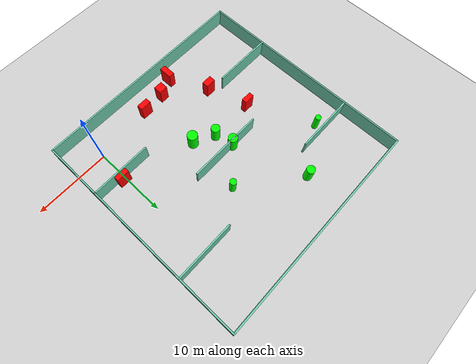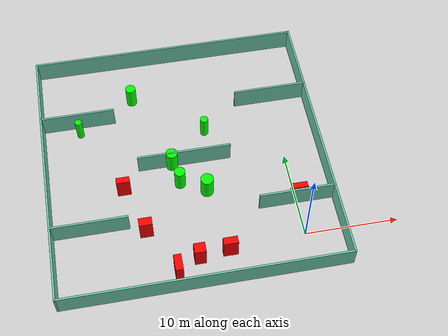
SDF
<sdf version="1.7">
 <world name="default">
  <light name="sun" type="directional">
   <pose>0 0 10 0 -0 0</pose>
   <diffuse>0.8 0.8 0.8 1</diffuse>
   <specular>0.2 0.2 0.2 1</specular>
   <attenuation>
    <range>1000</range>
    <constant>0.9</constant>
    <linear>0.01</linear>
    <quadratic>0.001</quadratic>
   </attenuation>
   <direction>-0.5 0.1 -0.9</direction>
   <spot><inner_angle>0</inner_angle><outer_angle>0</outer_angle><falloff>0</falloff></spot>
  </light>
  <model name="ground_plane">
   <static>1</static>
   <link name="link">
    <collision name="collision">
     <geometry><plane><normal>0 0 1</normal><size>100 100</size></plane></geometry>
     <surface>
      <contact><collide_bitmask>65535</collide_bitmask></contact>
      <friction><ode><mu>100</mu><mu2>50</mu2></ode></friction>
     </surface>
    </collision>
    <visual name="visual">
     <cast_shadows>0</cast_shadows>
     <geometry><plane><normal>0 0 1</normal><size>100 100</size></plane></geometry>
     <material>
      <script><uri>file://media/materials/scripts/gazebo.material</uri><name>Gazebo/Grey</name></script>
     </material>
    </visual>
   </link>
  </model>
  <gravity>0 0 -9.8</gravity>
  <magnetic_field>6e-06 2.3e-05 -4.2e-05</magnetic_field>
  <atmosphere type="adiabatic"/>
  <physics type="ode">
   <max_step_size>0.001</max_step_size>
   <real_time_factor>1</real_time_factor>
   <real_time_update_rate>1000</real_time_update_rate>
  </physics>
  <scene><ambient>0.4 0.4 0.4 1</ambient><background>0.7 0.7 0.7 1</background><shadows>1</shadows></scene>
  <spherical_coordinates>
   <surface_model>EARTH_WGS84</surface_model>
   <latitude_deg>0</latitude_deg>
   <longitude_deg>0</longitude_deg>
   <elevation>0</elevation>
   <heading_deg>0</heading_deg>
  </spherical_coordinates>
  <model name="my_base_walls">
   <link name="Wall_10">
    <collision name="Wall_10_Collision">
     <geometry><box><size>8.2 0.2 2.5</size></box></geometry>
     <pose>0 0 1.25 0 -0 0</pose>
    </collision>
    <visual name="Wall_10_Visual">
     <pose>0 0 1.25 0 -0 0</pose>
     <geometry><box><size>8.2 0.2 2.5</size></box></geometry>
     <material>
      <script><uri>file://media/materials/scripts/gazebo.material</uri><name>Gazebo/Grey</name></script>
      <ambient>0.435294 0.796078 0.67451 1</ambient>
     </material>
     <meta><layer>0</layer></meta>
    </visual>
    <pose>-11 -7 0 0 -0 0</pose>
   </link>
   <link name="Wall_12">
    <collision name="Wall_12_Collision">
     <geometry><box><size>8.2 0.2 2.5</size></box></geometry>
     <pose>0 0 1.25 0 -0 0</pose>
    </collision>
    <visual name="Wall_12_Visual">
     <pose>0 0 1.25 0 -0 0</pose>
     <geometry><box><size>8.2 0.2 2.5</size></box></geometry>
     <material>
      <script><uri>file://media/materials/scripts/gazebo.material</uri><name>Gazebo/Grey</name></script>
      <ambient>0.435294 0.796078 0.67451 1</ambient>
     </material>
     <meta><layer>0</layer></meta>
    </visual>
    <pose>-11 7 0 0 -0 0</pose>
   </link>
   <link name="Wall_14">
    <collision name="Wall_14_Collision">
     <geometry><box><size>8.2 0.2 2.5</size></box></geometry>
     <pose>0 0 1.25 0 -0 0</pose>
    </collision>
    <visual name="Wall_14_Visual">
     <pose>0 0 1.25 0 -0 0</pose>
     <geometry><box><size>8.2 0.2 2.5</size></box></geometry>
     <material>
      <script><uri>file://media/materials/scripts/gazebo.material</uri><name>Gazebo/Grey</name></script>
      <ambient>0.435294 0.796078 0.67451 1</ambient>
     </material>
     <meta><layer>0</layer></meta>
    </visual>
    <pose>11 7 0 0 -0 3.14159</pose>
   </link>
   <link name="Wall_16">
    <collision name="Wall_16_Collision">
     <geometry><box><size>10.2 0.2 2.5</size></box></geometry>
     <pose>0 0 1.25 0 -0 0</pose>
    </collision>
    <visual name="Wall_16_Visual">
     <pose>0 0 1.25 0 -0 0</pose>
     <geometry><box><size>10.2 0.2 2.5</size></box></geometry>
     <material>
      <script><uri>file://media/materials/scripts/gazebo.material</uri><name>Gazebo/Grey</name></script>
      <ambient>0.435294 0.796078 0.67451 1</ambient>
     </material>
     <meta><layer>0</layer></meta>
    </visual>
    <pose>0 0 0 0 -0 3.14159</pose>
   </link>
   <link name="Wall_2">
    <collision name="Wall_2_Collision">
     <geometry><box><size>30.2 0.2 2.5</size></box></geometry>
     <pose>0 0 1.25 0 -0 0</pose>
    </collision>
    <visual name="Wall_2_Visual">
     <pose>0 0 1.25 0 -0 0</pose>
     <geometry><box><size>30.2 0.2 2.5</size></box></geometry>
     <material>
      <script><uri>file://media/materials/scripts/gazebo.material</uri><name>Gazebo/Grey</name></script>
      <ambient>0.435294 0.796078 0.67451 1</ambient>
     </material>
     <meta><layer>0</layer></meta>
    </visual>
    <pose>0 -15 0 0 -0 3.14159</pose>
   </link>
   <link name="Wall_3">
    <collision name="Wall_3_Collision">
     <geometry><box><size>30.2 0.2 2.5</size></box></geometry>
     <pose>0 0 1.25 0 -0 0</pose>
    </collision>
    <visual name="Wall_3_Visual">
     <pose>0 0 1.25 0 -0 0</pose>
     <geometry><box><size>30.2 0.2 2.5</size></box></geometry>
     <material>
      <script><uri>file://media/materials/scripts/gazebo.material</uri><name>Gazebo/Grey</name></script>
      <ambient>0.435294 0.796078 0.67451 1</ambient>
     </material>
     <meta><layer>0</layer></meta>
    </visual>
    <pose>-15 0 0 0 -0 1.5708</pose>
   </link>
   <link name="Wall_4">
    <collision name="Wall_4_Collision">
     <geometry><box><size>30.2 0.2 2.5</size></box></geometry>
     <pose>0 0 1.25 0 -0 0</pose>
    </collision>
    <visual name="Wall_4_Visual">
     <pose>0 0 1.25 0 -0 0</pose>
     <geometry><box><size>30.2 0.2 2.5</size></box></geometry>
     <material>
      <script><uri>file://media/materials/scripts/gazebo.material</uri><name>Gazebo/Grey</name></script>
      <ambient>0.435294 0.796078 0.67451 1</ambient>
     </material>
     <meta><layer>0</layer></meta>
    </visual>
    <pose>0 15 0 0 -0 0</pose>
   </link>
   <link name="Wall_6">
    <collision name="Wall_6_Collision">
     <geometry><box><size>30.2 0.2 2.5</size></box></geometry>
     <pose>0 0 1.25 0 -0 0</pose>
    </collision>
    <visual name="Wall_6_Visual">
     <pose>0 0 1.25 0 -0 0</pose>
     <geometry><box><size>30.2 0.2 2.5</size></box></geometry>
     <material>
      <script><uri>file://media/materials/scripts/gazebo.material</uri><name>Gazebo/Grey</name></script>
      <ambient>0.435294 0.796078 0.67451 1</ambient>
     </material>
     <meta><layer>0</layer></meta>
    </visual>
    <pose>15 0 0 0 -0 1.5708</pose>
   </link>
   <link name="Wall_8">
    <collision name="Wall_8_Collision">
     <geometry><box><size>8.2 0.2 2.5</size></box></geometry>
     <pose>0 0 1.25 0 -0 0</pose>
    </collision>
    <visual name="Wall_8_Visual">
     <pose>0 0 1.25 0 -0 0</pose>
     <geometry><box><size>8.2 0.2 2.5</size></box></geometry>
     <material>
      <script><uri>file://media/materials/scripts/gazebo.material</uri><name>Gazebo/Grey</name></script>
      <ambient>0.435294 0.796078 0.67451 1</ambient>
     </material>
     <meta><layer>0</layer></meta>
    </visual>
    <pose>11 -7 0 0 -0 3.14159</pose>
   </link>
   <static>1</static>
   <pose>-11 11 0 0 -0 0</pose>
  </model>
  <model name="cylinder1">
   <static>1</static>
   <link name="link">
    <inertial>
     <mass>1</mass>
     <inertia><ixx>0.5</ixx><ixy>0</ixy><ixz>0</ixz><iyy>0.5</iyy><iyz>0</iyz><izz>1</izz></inertia>
    </inertial>
    <collision name="collision">
     <geometry><cylinder><radius>0.6935049382693372</radius><length>2.5</length></cylinder></geometry>
    </collision>
    <visual name="visual">
     <geometry><cylinder><radius>0.6935049382693372</radius><length>2.5</length></cylinder></geometry>
     <material>
      <ambient>0 1 0 1</ambient>
      <diffuse>0 1 0 1</diffuse>
      <specular>0.1 0.1 0.1 1</specular>
      <emissive>0 0 0 0</emissive>
     </material>
    </visual>
   </link>
   <pose>-9.16969957769431 7.01272207530333 1.25 0 0 0</pose>
  </model>
  <model name="cylinder2">
   <static>1</static>
   <link name="link">
    <inertial>
     <mass>1</mass>
     <inertia><ixx>0.5</ixx><ixy>0</ixy><ixz>0</ixz><iyy>0.5</iyy><iyz>0</iyz><izz>1</izz></inertia>
    </inertial>
    <collision name="collision">
     <geometry><cylinder><radius>0.5634184202157226</radius><length>2.5</length></cylinder></geometry>
    </collision>
    <visual name="visual">
     <geometry><cylinder><radius>0.5634184202157226</radius><length>2.5</length></cylinder></geometry>
     <material>
      <ambient>0 1 0 1</ambient>
      <diffuse>0 1 0 1</diffuse>
      <specular>0.1 0.1 0.1 1</specular>
      <emissive>0 0 0 0</emissive>
     </material>
    </visual>
   </link>
   <pose>-15.688371116368062 20.569905794341697 1.25 0 0 0</pose>
  </model>
  <model name="cylinder3">
   <static>1</static>
   <link name="link">
    <inertial>
     <mass>1</mass>
     <inertia><ixx>0.5</ixx><ixy>0</ixy><ixz>0</ixz><iyy>0.5</iyy><iyz>0</iyz><izz>1</izz></inertia>
    </inertial>
    <collision name="collision">
     <geometry><cylinder><radius>0.3836401330784923</radius><length>2.5</length></cylinder></geometry>
    </collision>
    <visual name="visual">
     <geometry><cylinder><radius>0.3836401330784923</radius><length>2.5</length></cylinder></geometry>
     <material>
      <ambient>0 1 0 1</ambient>
      <diffuse>0 1 0 1</diffuse>
      <specular>0.1 0.1 0.1 1</specular>
      <emissive>0 0 0 0</emissive>
     </material>
    </visual>
   </link>
   <pose>-21.931094768175985 16.867306141714025 1.25 0 0 0</pose>
  </model>
  <model name="cylinder4">
   <static>1</static>
   <link name="link">
    <inertial>
     <mass>1</mass>
     <inertia><ixx>0.5</ixx><ixy>0</ixy><ixz>0</ixz><iyy>0.5</iyy><iyz>0</iyz><izz>1</izz></inertia>
    </inertial>
    <collision name="collision">
     <geometry><cylinder><radius>0.4380758036214287</radius><length>2.5</length></cylinder></geometry>
    </collision>
    <visual name="visual">
     <geometry><cylinder><radius>0.4380758036214287</radius><length>2.5</length></cylinder></geometry>
     <material>
      <ambient>0 1 0 1</ambient>
      <diffuse>0 1 0 1</diffuse>
      <specular>0.1 0.1 0.1 1</specular>
      <emissive>0 0 0 0</emissive>
     </material>
    </visual>
   </link>
   <pose>-8.14488709549098 14.819652796684057 1.25 0 0 0</pose>
  </model>
  <model name="cylinder5">
   <static>1</static>
   <link name="link">
    <inertial>
     <mass>1</mass>
     <inertia><ixx>0.5</ixx><ixy>0</ixy><ixz>0</ixz><iyy>0.5</iyy><iyz>0</iyz><izz>1</izz></inertia>
    </inertial>
    <collision name="collision">
     <geometry><cylinder><radius>0.6299912309040715</radius><length>2.5</length></cylinder></geometry>
    </collision>
    <visual name="visual">
     <geometry><cylinder><radius>0.6299912309040715</radius><length>2.5</length></cylinder></geometry>
     <material>
      <ambient>0 1 0 1</ambient>
      <diffuse>0 1 0 1</diffuse>
      <specular>0.1 0.1 0.1 1</specular>
      <emissive>0 0 0 0</emissive>
     </material>
    </visual>
   </link>
   <pose>-12.386810052137358 10.93267462229133 1.25 0 0 0</pose>
  </model>
  <model name="cylinder6">
   <static>1</static>
   <link name="link">
    <inertial>
     <mass>1</mass>
     <inertia><ixx>0.5</ixx><ixy>0</ixy><ixz>0</ixz><iyy>0.5</iyy><iyz>0</iyz><izz>1</izz></inertia>
    </inertial>
    <collision name="collision">
     <geometry><cylinder><radius>0.5867141757615131</radius><length>2.5</length></cylinder></geometry>
    </collision>
    <visual name="visual">
     <geometry><cylinder><radius>0.5867141757615131</radius><length>2.5</length></cylinder></geometry>
     <material>
      <ambient>0 1 0 1</ambient>
      <diffuse>0 1 0 1</diffuse>
      <specular>0.1 0.1 0.1 1</specular>
      <emissive>0 0 0 0</emissive>
     </material>
    </visual>
   </link>
   <pose>-11.875257131018298 8.432693612936937 1.25 0 0 0</pose>
  </model>
  <model name="box1">
   <static>1</static>
   <link name="link">
    <inertial>
     <mass>1</mass>
     <inertia><ixx>0.083</ixx><ixy>0</ixy><ixz>0</ixz><iyy>0.083</iyy><iyz>0</iyz><izz>0.083</izz></inertia>
    </inertial>
    <collision name="collision">
     <geometry><box><size>1.189273298078468 1.100396134649285 2.5</size></box></geometry>
    </collision>
    <visual name="visual">
     <geometry><box><size>1.189273298078468 1.100396134649285 2.5</size></box></geometry>
     <material>
      <ambient>1 0 0 1</ambient>
      <diffuse>1 0 0 1</diffuse>
      <specular>0.1 0.1 0.1 1</specular>
      <emissive>0 0 0 0</emissive>
     </material>
    </visual>
    <sensor name="my_contact" type="contact">
     <contact><collision>box_collision</collision><topic>__default_topic__</topic></contact>
    </sensor>
   </link>
   <pose>-11.278639080895644 -0.9033261155003305 1.25 0 0 0</pose>
  </model>
  <model name="box2">
   <static>1</static>
   <link name="link">
    <inertial>
     <mass>1</mass>
     <inertia><ixx>0.083</ixx><ixy>0</ixy><ixz>0</ixz><iyy>0.083</iyy><iyz>0</iyz><izz>0.083</izz></inertia>
    </inertial>
    <collision name="collision">
     <geometry><box><size>1.6881424620411245 0.645502559033228 2.5</size></box></geometry>
    </collision>
    <visual name="visual">
     <geometry><box><size>1.6881424620411245 0.645502559033228 2.5</size></box></geometry>
     <material>
      <ambient>1 0 0 1</ambient>
      <diffuse>1 0 0 1</diffuse>
      <specular>0.1 0.1 0.1 1</specular>
      <emissive>0 0 0 0</emissive>
     </material>
    </visual>
    <sensor name="my_contact" type="contact">
     <contact><collision>box_collision</collision><topic>__default_topic__</topic></contact>
    </sensor>
   </link>
   <pose>0.3125991202075191 4.516681636091814 1.25 0 0 0</pose>
  </model>
  <model name="box3">
   <static>1</static>
   <link name="link">
    <inertial>
     <mass>1</mass>
     <inertia><ixx>0.083</ixx><ixy>0</ixy><ixz>0</ixz><iyy>0.083</iyy><iyz>0</iyz><izz>0.083</izz></inertia>
    </inertial>
    <collision name="collision">
     <geometry><box><size>0.7960908475267081 1.760816184665323 2.5</size></box></geometry>
    </collision>
    <visual name="visual">
     <geometry><box><size>0.7960908475267081 1.760816184665323 2.5</size></box></geometry>
     <material>
      <ambient>1 0 0 1</ambient>
      <diffuse>1 0 0 1</diffuse>
      <specular>0.1 0.1 0.1 1</specular>
      <emissive>0 0 0 0</emissive>
     </material>
    </visual>
    <sensor name="my_contact" type="contact">
     <contact><collision>box_collision</collision><topic>__default_topic__</topic></contact>
    </sensor>
   </link>
   <pose>-13.632719457805958 -2.1080333735923293 1.25 0 0 0</pose>
  </model>
  <model name="box4">
   <static>1</static>
   <link name="link">
    <inertial>
     <mass>1</mass>
     <inertia><ixx>0.083</ixx><ixy>0</ixy><ixz>0</ixz><iyy>0.083</iyy><iyz>0</iyz><izz>0.083</izz></inertia>
    </inertial>
    <collision name="collision">
     <geometry><box><size>1.4399274976643275 0.6916250824631065 2.5</size></box></geometry>
    </collision>
    <visual name="visual">
     <geometry><box><size>1.4399274976643275 0.6916250824631065 2.5</size></box></geometry>
     <material>
      <ambient>1 0 0 1</ambient>
      <diffuse>1 0 0 1</diffuse>
      <specular>0.1 0.1 0.1 1</specular>
      <emissive>0 0 0 0</emissive>
     </material>
    </visual>
    <sensor name="my_contact" type="contact">
     <contact><collision>box_collision</collision><topic>__default_topic__</topic></contact>
    </sensor>
   </link>
   <pose>-17.964203120504276 8.43783727091458 1.25 0 0 0</pose>
  </model>
  <model name="box5">
   <static>1</static>
   <link name="link">
    <inertial>
     <mass>1</mass>
     <inertia><ixx>0.083</ixx><ixy>0</ixy><ixz>0</ixz><iyy>0.083</iyy><iyz>0</iyz><izz>0.083</izz></inertia>
    </inertial>
    <collision name="collision">
     <geometry><box><size>1.5294997481990127 0.7833837348471708 2.5</size></box></geometry>
    </collision>
    <visual name="visual">
     <geometry><box><size>1.5294997481990127 0.7833837348471708 2.5</size></box></geometry>
     <material>
      <ambient>1 0 0 1</ambient>
      <diffuse>1 0 0 1</diffuse>
      <specular>0.1 0.1 0.1 1</specular>
      <emissive>0 0 0 0</emissive>
     </material>
    </visual>
    <sensor name="my_contact" type="contact">
     <contact><collision>box_collision</collision><topic>__default_topic__</topic></contact>
    </sensor>
   </link>
   <pose>-8.087374586394551 -0.6522063648598109 1.25 0 0 0</pose>
  </model>
  <model name="box6">
   <static>1</static>
   <link name="link">
    <inertial>
     <mass>1</mass>
     <inertia><ixx>0.083</ixx><ixy>0</ixy><ixz>0</ixz><iyy>0.083</iyy><iyz>0</iyz><izz>0.083</izz></inertia>
    </inertial>
    <collision name="collision">
     <geometry><box><size>1.3882403281007423 0.8977102291577765 2.5</size></box></geometry>
    </collision>
    <visual name="visual">
     <geometry><box><size>1.3882403281007423 0.8977102291577765 2.5</size></box></geometry>
     <material>
      <ambient>1 0 0 1</ambient>
      <diffuse>1 0 0 1</diffuse>
      <specular>0.1 0.1 0.1 1</specular>
      <emissive>0 0 0 0</emissive>
     </material>
    </visual>
    <sensor name="my_contact" type="contact">
     <contact><collision>box_collision</collision><topic>__default_topic__</topic></contact>
    </sensor>
   </link>
   <pose>-16.273434132894067 3.042095317803586 1.25 0 0 0</pose>
  </model>
 </world>
</sdf>
